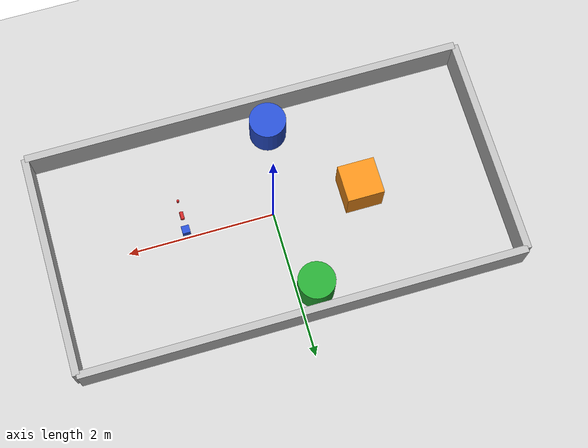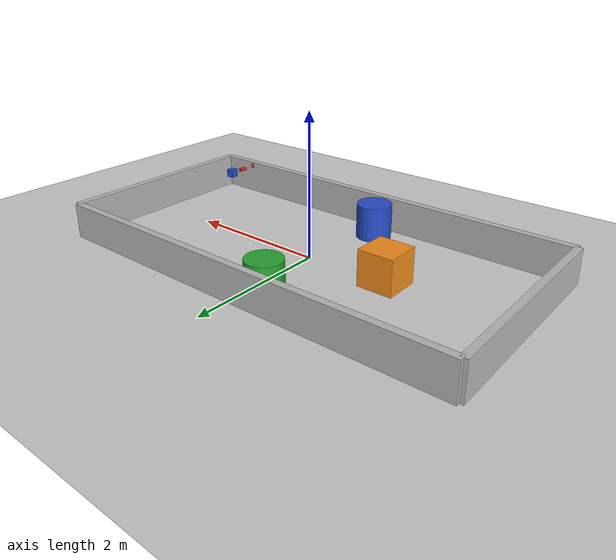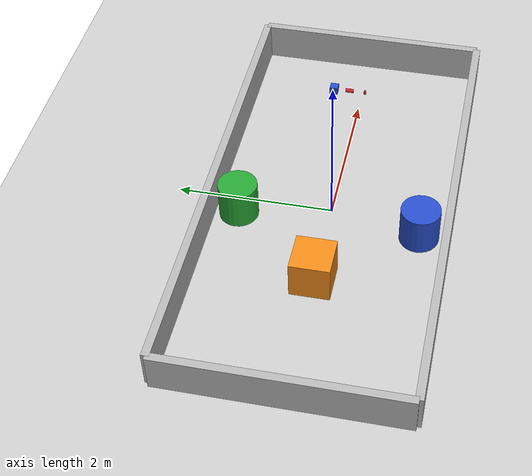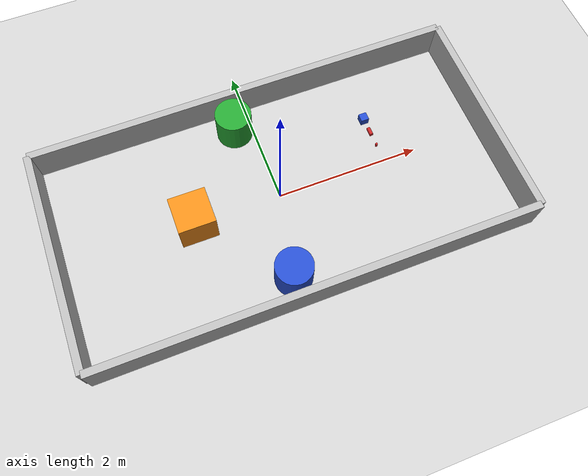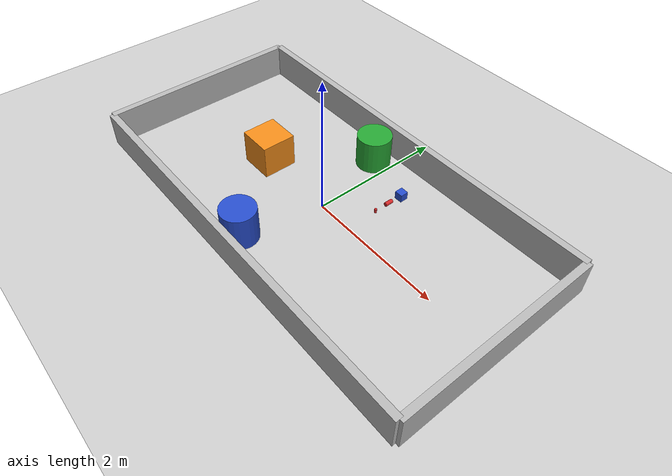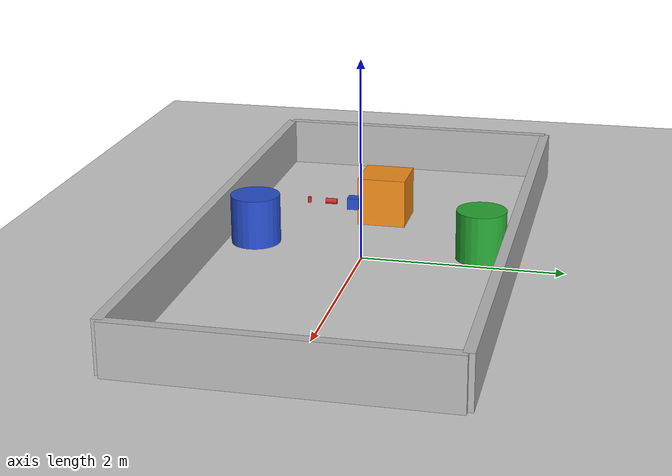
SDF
<sdf version="1.4">
 <world name="default">
  <physics type="ode">
   <gravity>0 0 -9.81</gravity>
   <ode>
    <solver><type>quick</type><iters>20</iters><sor>1.0</sor></solver>
    <constraints>
     <cfm>0.0</cfm>
     <erp>0.2</erp>
     <contact_max_correcting_vel>100.0</contact_max_correcting_vel>
     <contact_surface_layer>0.0</contact_surface_layer>
    </constraints>
   </ode>
   <real_time_update_rate>1000</real_time_update_rate>
   <max_step_size>0.001</max_step_size>
  </physics>
  <include><uri>model://sun</uri></include>
  <include><uri>model://ground_plane</uri></include>
  <model name="wall_1_model">
   <pose>-0 -1.5 0.25 0 0 0</pose>
   <static>true</static>
   <link name="wall_1_body">
    <inertial>
     <mass>1.0</mass>
     <inertia><ixx>1.0</ixx><ixy>0.0</ixy><ixz>0.0</ixz><iyy>1.0</iyy><iyz>0.0</iyz><izz>1.0</izz></inertia>
    </inertial>
    <collision name="collision"><geometry><box><size>6.0 0.1 0.5</size></box></geometry></collision>
    <visual name="visual"><geometry><box><size>6.0 0.1 0.5</size></box></geometry></visual>
   </link>
  </model>
  <model name="wall_2_model">
   <pose>0 1.5 0.25 0 0 0</pose>
   <static>true</static>
   <link name="wall_2_body">
    <inertial>
     <mass>1.0</mass>
     <inertia><ixx>1.0</ixx><ixy>0.0</ixy><ixz>0.0</ixz><iyy>1.0</iyy><iyz>0.0</iyz><izz>1.0</izz></inertia>
    </inertial>
    <collision name="collision"><geometry><box><size>6.0 0.1 0.5</size></box></geometry></collision>
    <visual name="visual"><geometry><box><size>6.0 0.1 0.5</size></box></geometry></visual>
   </link>
  </model>
  <model name="wall_3_model">
   <pose>3.0 0 0.25 0 0 1.57</pose>
   <static>true</static>
   <link name="wall_3_body">
    <inertial>
     <mass>1.0</mass>
     <inertia><ixx>1.0</ixx><ixy>0.0</ixy><ixz>0.0</ixz><iyy>1.0</iyy><iyz>0.0</iyz><izz>1.0</izz></inertia>
    </inertial>
    <collision name="collision"><geometry><box><size>3.0 0.1 0.5</size></box></geometry></collision>
    <visual name="visual"><geometry><box><size>3.0 0.1 0.5</size></box></geometry></visual>
   </link>
  </model>
  <model name="wall_4_model">
   <pose>-3.0 0 0.25 0 0 1.57</pose>
   <static>true</static>
   <link name="wall_4_body">
    <inertial>
     <mass>1.0</mass>
     <inertia><ixx>1.0</ixx><ixy>0.0</ixy><ixz>0.0</ixz><iyy>1.0</iyy><iyz>0.0</iyz><izz>1.0</izz></inertia>
    </inertial>
    <collision name="collision"><geometry><box><size>3.0 0.1 0.5</size></box></geometry></collision>
    <visual name="visual"><geometry><box><size>3.0 0.1 0.5</size></box></geometry></visual>
   </link>
  </model>
  <model name="grasp_object">
   <pose>1.2 0.0 1.0 1.57 0 0</pose>
   <link name="grasp_object">
    <collision name="collision">
     <geometry><cylinder><length>0.1</length><radius>0.025</radius></cylinder></geometry>
    </collision>
    <visual name="visual">
     <geometry><cylinder><length>0.1</length><radius>0.025</radius></cylinder></geometry>
     <material>
      <script><uri>file://media/materials/scripts/gazebo.material</uri><name>Gazebo/Red</name></script>
     </material>
    </visual>
   </link>
  </model>
  <model name="object_1">
   <pose>1.2 -0.2 1.0 0 0 0</pose>
   <link name="grasp_object">
    <collision name="collision">
     <geometry><cylinder><length>0.05</length><radius>0.015</radius></cylinder></geometry>
    </collision>
    <visual name="visual">
     <geometry><cylinder><length>0.05</length><radius>0.015</radius></cylinder></geometry>
     <material>
      <script><uri>file://media/materials/scripts/gazebo.material</uri><name>Gazebo/Red</name></script>
     </material>
    </visual>
   </link>
  </model>
  <model name="object_2">
   <pose>1.2 0.2 1.0 0 0 0</pose>
   <link name="grasp_object">
    <collision name="collision"><geometry><box><size>0.1 0.1 0.1</size></box></geometry></collision>
    <visual name="visual">
     <geometry><box><size>0.1 0.1 0.1</size></box></geometry>
     <material>
      <script><uri>file://media/materials/scripts/gazebo.material</uri><name>Gazebo/Blue</name></script>
     </material>
    </visual>
   </link>
  </model>
  <model name="puff_1">
   <pose>-0.25 -1.15 0.25 0 0 0</pose>
   <static>true</static>
   <link name="puff_1_body">
    <collision name="collision">
     <geometry><cylinder><length>0.5</length><radius>0.25</radius></cylinder></geometry>
    </collision>
    <visual name="visual">
     <geometry><cylinder><length>0.5</length><radius>0.25</radius></cylinder></geometry>
     <material>
      <script><uri>file://media/materials/scripts/gazebo.material</uri><name>Gazebo/Blue</name></script>
     </material>
    </visual>
   </link>
  </model>
  <model name="puff_2">
   <pose>-0.25 1.15 0.25 0 0 0</pose>
   <static>true</static>
   <link name="puff_2_body">
    <collision name="collision">
     <geometry><cylinder><length>0.5</length><radius>0.25</radius></cylinder></geometry>
    </collision>
    <visual name="visual">
     <geometry><cylinder><length>0.5</length><radius>0.25</radius></cylinder></geometry>
     <material>
      <script><uri>file://media/materials/scripts/gazebo.material</uri><name>Gazebo/Green</name></script>
     </material>
    </visual>
   </link>
  </model>
  <model name="puff_square">
   <pose>-1.2 0 0.25 0 0 0</pose>
   <static>true</static>
   <link name="cylinder_2_body">
    <collision name="collision"><geometry><box><size>0.5 0.5 0.5</size></box></geometry></collision>
    <visual name="visual">
     <geometry><box><size>0.5 0.5 0.5</size></box></geometry>
     <material>
      <script><uri>file://media/materials/scripts/gazebo.material</uri><name>Gazebo/Orange</name></script>
     </material>
    </visual>
   </link>
  </model>
 </world>
</sdf>
